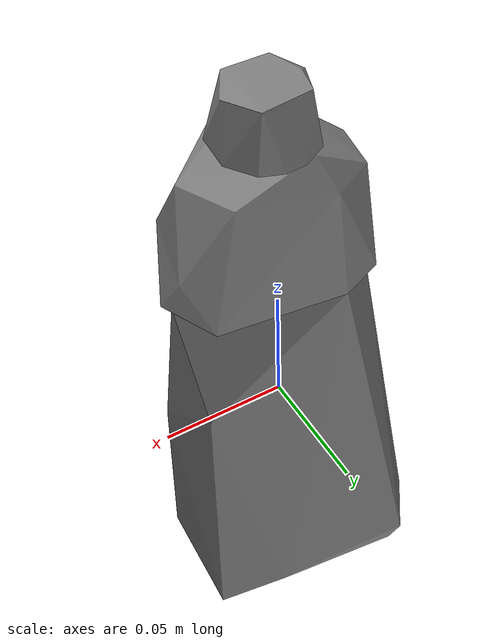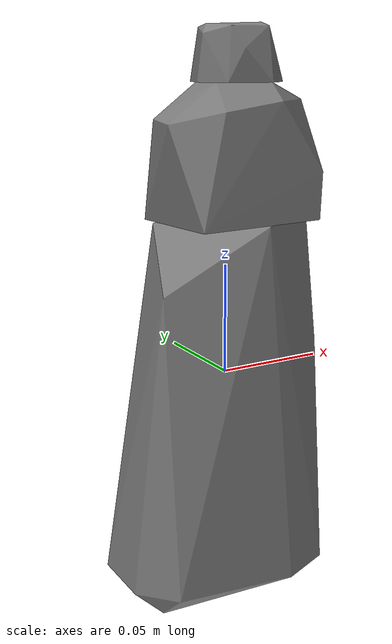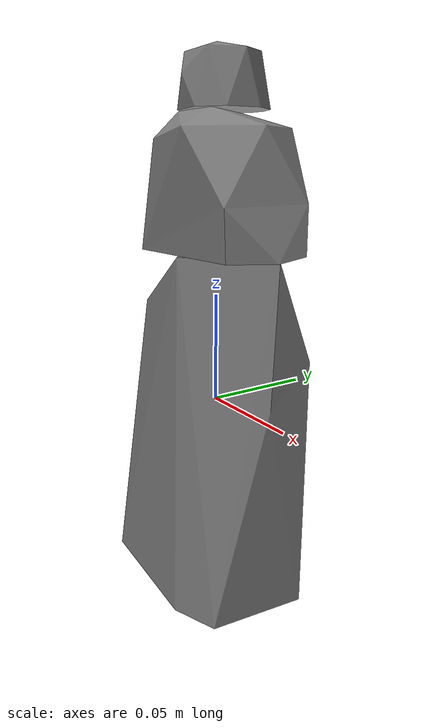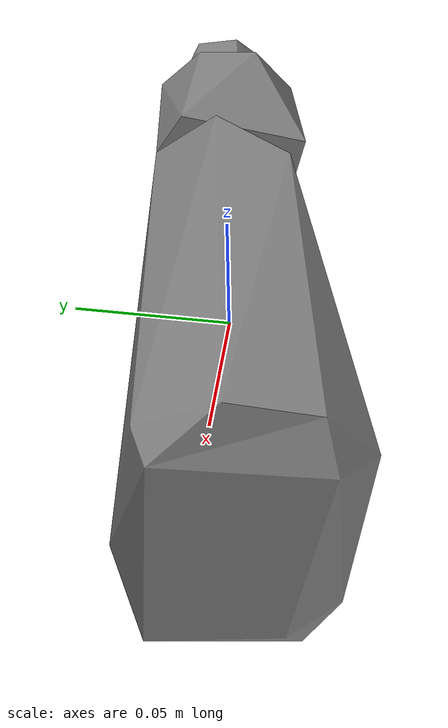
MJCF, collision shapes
<mujoco model="bleach_cleanser">
  <compiler angle="radian" />

  <asset>
    <mesh name="bleach_cleanser_visual_mesh" file="bleach_cleanser/textured.obj" />
    <mesh name="bleach_cleanser_collision_mesh_0" file="bleach_cleanser/textured_coacd_0.stl" />
    <mesh name="bleach_cleanser_collision_mesh_1" file="bleach_cleanser/textured_coacd_1.stl" />
    <mesh name="bleach_cleanser_collision_mesh_2" file="bleach_cleanser/textured_coacd_2.stl" />
    <texture name="bleach_cleanser_texture" type="2d" file="bleach_cleanser/texture_map.png" />
    <material name="bleach_cleanser_material" texture="bleach_cleanser_texture" />
  </asset>

  <worldbody>
    <body name="bleach_cleanser" pos="0 0 0" euler="0 0 0">
      <freejoint name="bleach_cleanser_joint" />
      <geom name="bleach_cleanser_visual_geom" type="mesh" mesh="bleach_cleanser_visual_mesh" material="bleach_cleanser_material" pos="0.017138949272641098 -0.011574369859748879 -0.09969796254743377" euler="0 0 0" contype="0" conaffinity="0" group="0" />
      <geom name="bleach_cleanser_collision_geom_0" type="mesh" mesh="bleach_cleanser_collision_mesh_0" pos="0.017138949272641098 -0.011574369859748879 -0.09969796254743377" euler="0 0 0" contype="1" conaffinity="1" group="3" />
      <geom name="bleach_cleanser_collision_geom_1" type="mesh" mesh="bleach_cleanser_collision_mesh_1" pos="0.017138949272641098 -0.011574369859748879 -0.09969796254743377" euler="0 0 0" contype="1" conaffinity="1" group="3" />
      <geom name="bleach_cleanser_collision_geom_2" type="mesh" mesh="bleach_cleanser_collision_mesh_2" pos="0.017138949272641098 -0.011574369859748879 -0.09969796254743377" euler="0 0 0" contype="1" conaffinity="1" group="3" />
      <inertial pos="0 0 0" euler="0 0 0" mass="1.131" diaginertia="0.001 0.001 0.001" />
    </body>
  </worldbody>
</mujoco>
